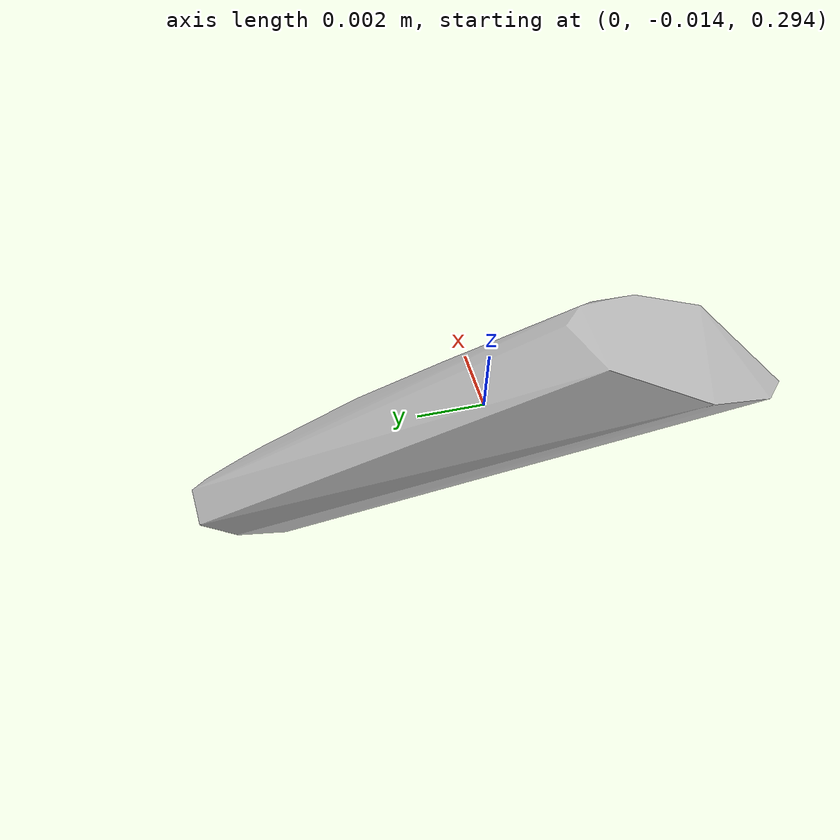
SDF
<?xml version="1.0"?>
<sdf version="1.7">
  <model name="vascular_partexport036">
    <link name="vascular_partexport036_body">
      <visual name="vascular_partexport036_visual">
        <geometry>
          <mesh>
            <uri>vascular_partexport036.obj</uri>
          </mesh>
        </geometry>
      </visual>
      <collision name="vascular_partexport036_collision">
        <geometry>
          <mesh>
            <uri>vascular_partexport036.obj</uri>
          </mesh>
        </geometry>
      </collision>
    </link>
    <frame name="vascular_partexport036_center">
      <pose relative_to="vascular_partexport036_body">0 0 0 0 0 0</pose>
    </frame>
  </model>
</sdf>
